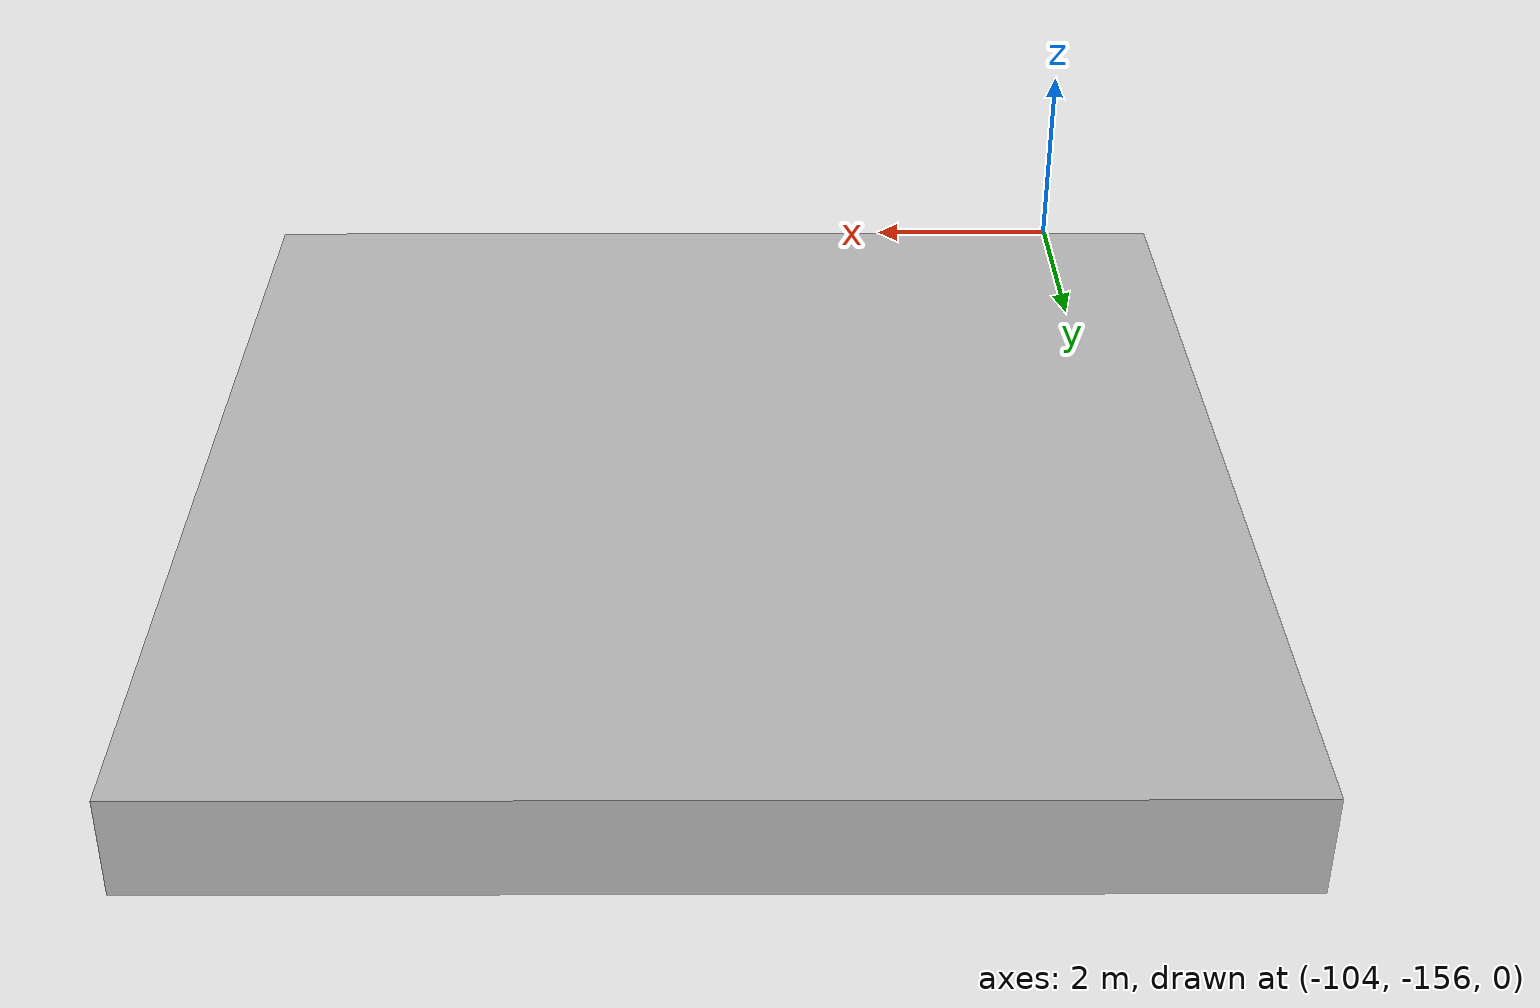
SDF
<?xml version="1.0" ?>
<sdf version="1.4">
  <world name="default">
    <scene>
      <ambient>1 1 1 1</ambient>
      <background>0 0 0 1</background>
      <grid>false</grid>
    </scene>

    <!-- place user camera -->
    <gui>
      <camera name="user_camera">
        <pose>-100 -150 1.0 0 1.5707 0</pose>
      </camera>
    </gui>

    <model name="box">
      <static>true</static>
      <pose>-100 -150 0 0 0 0</pose>
      <link name="link">
        <collision name="collision">
          <geometry>
            <box>
              <size>10 10 1</size>
            </box>
          </geometry>
        </collision>
        <visual name="visual">
          <geometry>
            <box>
              <size>10 10 1</size>
            </box>
          </geometry>
        </visual>
      </link>
    </model>

  </world>
</sdf>
